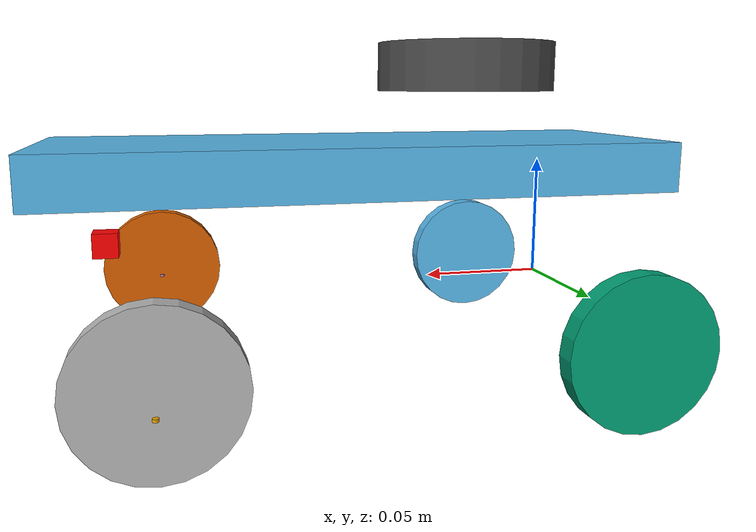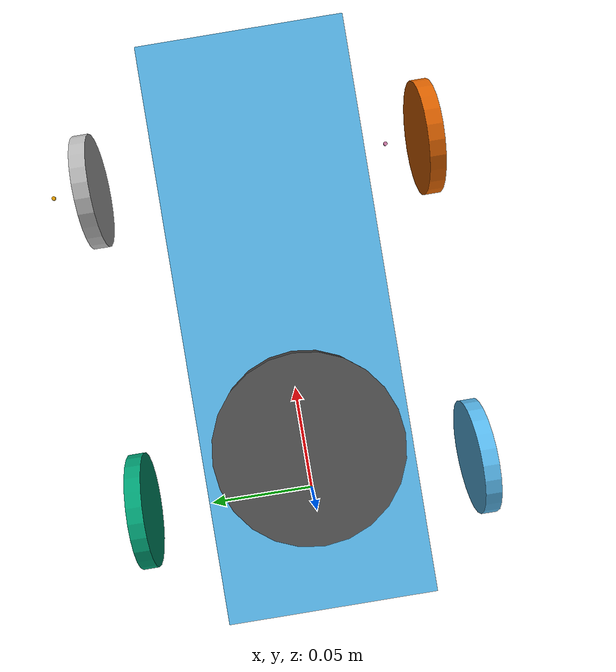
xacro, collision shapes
<?xml version="1.0" ?>

<robot name="hamster" xmlns:xacro="http://www.ros.org/wiki/xacro">

	<xacro:include filename="$(find hamster_vehicle_description)/urdf/front_wheel.urdf.xacro" />
	<xacro:include filename="$(find hamster_vehicle_description)/urdf/rear_wheel.urdf.xacro" />

	<xacro:macro name="solid_cuboid_inertia" params="w h d m">
	<inertia  ixx="${m*(h*h+d*d)/12}" ixy = "0" ixz = "0"
						iyy="${m*(w*w+d*d)/12}" iyz = "0"
						izz="${m*(w*w+h*h)/12}" />
	</xacro:macro>

	<xacro:arg name="agent" default="agent1" />
	<xacro:arg name="robot_version" default="V6"/>
	<xacro:arg name="is_simulation" default="true"/>

	<xacro:property name="version" value="$(arg robot_version)"/>
	<xacro:property name="simulation" value="$(arg is_simulation)"/>

	<material name="red">
		<color rgba="${255/255} ${0/255} ${0/255} 1.0"/>
	</material>

	<link name="$(arg agent)/base_link" />

	<link name="$(arg agent)/body">
		<inertial>
			<mass value="3.0" />
			<xacro:solid_cuboid_inertia w="0.1" h="0.1" d="0.3" m="3.0"/>
		</inertial>
		<visual>
			<origin xyz="0 0 0" rpy="0 0 0"/>
			<geometry>
				<mesh filename="package://hamster_vehicle_description/meshes/shell.dae" />
			</geometry>
		</visual>
		<collision>
			<origin xyz="0 0 0.05" rpy="0 0 0"/>
			<geometry>
				<box size="0.25 0.09 0.02" />
			</geometry>
		</collision>
	</link>

	<link name="$(arg agent)/imu_link">
		<inertial>
			<mass value="0.01" />
			<xacro:solid_cuboid_inertia w="0.05" h="0.05" d="0.07" m="0.01"/>
		</inertial>
		<visual>
			<geometry>
				<box size="0.01 0.01 0.01" />
			</geometry>
		</visual>
	</link>

	<joint name="body_link_joint" type="fixed">
		<origin xyz="0.085 0 0" rpy="0 0 0" />
		<parent link="$(arg agent)/base_link" />
		<child  link="$(arg agent)/body" />
	</joint>

	<joint name="imu_link_joint" type="fixed">
		<origin xyz="0.085 0 0" rpy="0 0 0" />
		<parent link="$(arg agent)/base_link" />
		<child  link="$(arg agent)/imu_link" />
	</joint>

	<joint name="hokuyo_joint" type="fixed">
		<axis xyz="0 1 0" />
		<xacro:if value="${simulation}">
			<origin xyz="0.035 0 0.09" rpy="0 0 -3.14"/>
		</xacro:if>
		<xacro:unless value="${simulation}">
			<origin xyz="0.035 0 0.09" rpy="0 0 0"/>
		</xacro:unless>
		<parent link="$(arg agent)/base_link"/>
		<child link="$(arg agent)/lidar_link"/>
	</joint>

	<joint name="camera_joint" type="fixed">
		<xacro:if value="${version == 'V7'}">
			<origin xyz="0.20173 0 0.028" rpy="0 0 0"/>
		</xacro:if>
		<xacro:if value="${version == 'V6'}">
			<origin xyz="0.185 0 0.02" rpy="0 0 0"/>
		</xacro:if>
		<parent link="$(arg agent)/base_link"/>
		<child link="$(arg agent)/camera_link"/>
	</joint>

	<xacro:if value="${version == 'V7'}">
		<link name="$(arg agent)/camera_optical_frame_link"/>
			<joint name="camera_optical_joint" type="fixed">
				<origin xyz="0 0 0" rpy="-1.57 0 -1.57"/>
				<parent link="$(arg agent)/camera_link"/>
				<child link="$(arg agent)/camera_optical_frame_link"/>
			</joint>
	</xacro:if>

	<!-- Hokuyo Laser -->
	<link name="$(arg agent)/lidar_link">
		<visual>
			<geometry>
				<mesh filename="package://hamster_vehicle_description/meshes/A2_lidar.dae" />
			</geometry>
		</visual>
		<collision>
			<origin xyz="0 0 0" rpy="0 0 0" />
			<geometry>
				<cylinder length="0.02" radius="0.037" />
			</geometry>
		</collision>
	</link>

	<link name="$(arg agent)/camera_link">
		<collision>
			<geometry>
		<box size="0.01 0.01 0.01"/>
			</geometry>
		</collision>
		<visual>
			<geometry>
				<xacro:if value="${version == 'V7'}">
				<mesh filename="package://hamster_vehicle_description/meshes/d415.stl" />
				</xacro:if>
				<xacro:if value="${version == 'V6'}">
				<mesh filename="package://hamster_vehicle_description/meshes/camera.stl" />
				</xacro:if>
			</geometry>
			<material name="red"/>
		</visual>
		<inertial>
			<mass value="1e-5" />
			<inertia ixx="1e-6" ixy="0" ixz="0" iyy="1e-6" iyz="0" izz="1e-6" />
		</inertial>
	</link>

	<xacro:front_wheel agent="$(arg agent)" fr="front" lr="right" parent="$(arg agent)/base_link" origin_x="0.165" origin_y="-0.086" origin_z="-0.01"/>
	<xacro:front_wheel agent="$(arg agent)" fr="front" lr="left"  parent="$(arg agent)/base_link" origin_x="0.165" origin_y="0.086"  origin_z="-0.01"/>
	<xacro:rear_wheel  agent="$(arg agent)" fr="rear"  lr="right" parent="$(arg agent)/base_link" origin_x="0.0"   origin_y="-0.086" origin_z="-0.01"/>
	<xacro:rear_wheel  agent="$(arg agent)" fr="rear"  lr="left"  parent="$(arg agent)/base_link" origin_x="0.0"   origin_y="0.086"  origin_z="-0.01"/>

	<gazebo>
		<plugin name='ackermann_drive_plugin' filename='libgazebo_ros_ackermann_drive2.so'>

        <ros>
          <namespace>$(arg agent)</namespace>
        </ros>

        <update_rate>100.0</update_rate>

        <!-- wheels -->
        <front_left_joint>$(arg agent)_front_left_wheel_steering_joint</front_left_joint>
        <front_right_joint>$(arg agent)_front_right_wheel_steering_joint</front_right_joint>
        <rear_left_joint>$(arg agent)_rear_left_wheel_joint</rear_left_joint>
        <rear_right_joint>$(arg agent)_rear_right_wheel_joint</rear_right_joint>
        <left_steering_joint>$(arg agent)_front_left_wheel_steering_joint</left_steering_joint>
        <right_steering_joint>$(arg agent)_front_right_wheel_steering_joint</right_steering_joint>

        <!-- Max absolute steer angle for tyre in radians-->
        <!-- Any cmd_vel angular z greater than this would be capped -->
        <max_steer>0.6458</max_steer>

        <!-- Max absolute steering angle of steering wheel -->
        <max_steering_angle>7.85</max_steering_angle>

        <!-- Max absolute linear speed in m/s -->
        <max_speed>20</max_speed>

        <!-- PID tuning -->
        <left_steering_pid_gain>1500 0 1</left_steering_pid_gain>
        <left_steering_i_range>0 0</left_steering_i_range>
        <right_steering_pid_gain>1500 0 1</right_steering_pid_gain>
        <right_steering_i_range>0 0</right_steering_i_range>
        <linear_velocity_pid_gain>1000 0 1</linear_velocity_pid_gain>
        <linear_velocity_i_range>0 0</linear_velocity_i_range>

        <!-- output -->
        <publish_odom>true</publish_odom>
        <publish_odom_tf>true</publish_odom_tf>
        <publish_wheel_tf>true</publish_wheel_tf>

        <odometry_frame>$(arg agent)/odom</odometry_frame>
        <robot_base_frame>$(arg agent)/base_link</robot_base_frame>

      </plugin>
	</gazebo>

	<gazebo reference="$(arg agent)/imu_link">
		<gravity>true</gravity>
		<sensor name="imu_sensor" type="imu">
			<always_on>true</always_on>
			<update_rate>100</update_rate>
			<visualize>true</visualize>
			<topic>__default_topic__</topic>
			<plugin filename="libgazebo_ros_imu_sensor.so" name="imu_plugin">
				<ros>
					<namespace>$(arg agent)</namespace>
					<remapping>imu_plugin/out:=imu</remapping>
				</ros>
				<frame_name>$(arg agent)/imu_link</frame_name>
			</plugin>
		</sensor>
	</gazebo>

	<gazebo reference="$(arg agent)/lidar_link">
		<sensor type="ray" name="head_hokuyo_sensor">
			<pose>0 0 0 0 0 0</pose>
			<visualize>false</visualize>
			<update_rate>10</update_rate>
			<ray>
				<scan>
					<horizontal>
						<samples>360</samples>
						<resolution>1</resolution>
						<min_angle>-3.1415</min_angle>
						<max_angle>3.1415</max_angle>
					</horizontal>
				</scan>
				<range>
					<min>0.10</min>
					<max>12.0</max>
					<resolution>0.01</resolution>
				</range>
				<noise>
					<type>gaussian</type>
					<mean>0.0</mean>
					<stddev>0.01</stddev>
				</noise>
			</ray>
			<plugin name="lidar_plugin" filename="libgazebo_ros_ray_sensor.so">
				<ros>
					<namespace>$(arg agent)</namespace>
					<remapping>lidar_plugin/out:=scan</remapping>
				</ros>
				<frame_name>$(arg agent)/lidar_link</frame_name>
				<output_type>sensor_msgs/LaserScan</output_type>
			</plugin>
		</sensor>
		<material>Gazebo/DarkGrey</material>
	</gazebo>

	<xacro:if value="${version == 'V7'}">
		<gazebo reference="$(arg agent)/camera_link">
			<sensor name="depth_camera" type="depth">
				<update_rate>15</update_rate>
				<camera>
					<horizontal_fov>1.5882496</horizontal_fov>
					<image>
						<width>640</width>
						<height>480</height>
						<format>B8G8R8</format>
					</image>
					<clip>
						<near>0.05</near>
						<far>200</far>
					</clip>
				</camera>
				<plugin name="camera_plugin" filename="libgazebo_ros_camera.so">
					<ros>
						<namespace>$(arg agent)</namespace>
					</ros>
					<alwaysOn>true</alwaysOn>
					<camera_name>camera</camera_name>
					<frame_name>$(arg agent)/camera_link</frame_name>
					<P_cx>0</P_cx>
					<P_cy>320.5</P_cy>
					<P_fy>0</P_fy>
					<Tx>240.5</Tx>
					<Ty>0</Ty>
					<rectification_matrix>0.999 0.0 -0.049 0.0 1.0 0.0 0.049 0.0 0.999</rectification_matrix>
					<hack_baseline>0.07</hack_baseline>
				</plugin>
			</sensor>
		</gazebo>
	</xacro:if>

	<xacro:if value="${version == 'V6'}">
		<gazebo reference="$(arg agent)/camera_link">
			<sensor type="camera" name="camera1">
				<update_rate>30.0</update_rate>
				<camera name="head">
					<horizontal_fov>1.3962634</horizontal_fov>
					<image>
						<width>800</width>
						<height>800</height>
						<format>R8G8B8</format>
					</image>
					<clip>
						<near>0.02</near>
						<far>300</far>
					</clip>
					<noise>
						<type>gaussian</type>
						<!-- Noise is sampled independently per pixel on each frame.-->
						<!-- That pixel's noise value is added to each of its color -->
						<!-- channels, which at that point lie in the range [0,1]. -->
						<mean>0.0</mean>
						<stddev>0.007</stddev>
					</noise>
				</camera>
				<plugin name="camera_plugin" filename="libgazebo_ros_camera.so">
					<ros>
						<namespace>$(arg agent)</namespace>
					</ros>
					<alwaysOn>true</alwaysOn>
					<camera_name>camera</camera_name>
					<frame_name>$(arg agent)/camera_link</frame_name>
					<P_cx>0</P_cx>
					<P_cy>320.5</P_cy>
					<P_fy>0</P_fy>
					<Tx>240.5</Tx>
					<Ty>0</Ty>
					<rectification_matrix>0.999 0.0 -0.049 0.0 1.0 0.0 0.049 0.0 0.999</rectification_matrix>
					<hack_baseline>0.07</hack_baseline>
				</plugin>
			</sensor>
		</gazebo>
	</xacro:if>
</robot>

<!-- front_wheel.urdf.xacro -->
<robot name="front_wheel" xmlns:xacro="http://www.ros.org/wiki/xacro">

  <!-- Wheels -->
  <xacro:property name="wheel_radius" value="0.029" />
  <xacro:property name="wheel_height" value="0.02" />
  <xacro:property name="wheel_mass" value="0.1" /> <!-- in kg-->

  <xacro:macro name="cylinder_inertia" params="m r h">
    <inertia  ixx="${m*(3*r*r+h*h)/12}" ixy="0" ixz="0"
              iyy="${m*(3*r*r+h*h)/12}" iyz="0"
              izz="${m*r*r/2}" />
  </xacro:macro>

  <!--fr : front, rear ; lr: left, right -->
  <xacro:macro name="front_wheel" params="agent fr lr parent origin_x origin_y origin_z">
    <link name="${agent}/${fr}_${lr}_wheel">
      <visual>
        <origin xyz="0 0 0" rpy="1.57 0 0" />
        <geometry>
          <mesh filename="package://hamster_vehicle_description/meshes/hamster_wheel.dae" />
        </geometry>
      </visual>
      <collision>
        <origin xyz="0 0 0" rpy="1.57 0 0" />
        <geometry>
          <cylinder length="0.008" radius="${wheel_radius}" />
        </geometry>
      </collision>
      <inertial>
        <mass value="${wheel_mass}" />
        <origin xyz="0 0 0" rpy="1.57 0 0" />
        <xacro:cylinder_inertia  m="${wheel_mass}" r="${wheel_radius}" h="${wheel_height}" />
      </inertial>
    </link>

    <link name="${agent}/${fr}_${lr}_wheel_steering">
      <collision>
        <origin xyz="0 0.02 0" rpy="0 0 0" />
        <geometry>
          <cylinder length="0.001" radius="0.001" />
        </geometry>
      </collision>
      <inertial>
        <mass value="0.1" />
        <origin xyz="0 0 0" rpy="0 0 0" />
        <xacro:cylinder_inertia  m="0.1" r="0.01" h="0.01" />
      </inertial>
    </link>

    <gazebo reference="${agent}/${fr}_${lr}_wheel">
      <mu1>0.7</mu1>
      <mu2>0.7</mu2>
      <kp>500000.0</kp>
      <kd>10.0</kd>
      <minDepth>0.002</minDepth>
      <maxVel>0.1</maxVel>
      <fdir1>1 0 0</fdir1>
      <maxContacts>20</maxContacts>
    </gazebo>

    <joint name="${agent}_${fr}_${lr}_wheel_joint" type="continuous">
      <parent link="${agent}/${fr}_${lr}_wheel_steering"/>
      <child link="${agent}/${fr}_${lr}_wheel"/>
      <origin xyz="0 0 0" rpy="0 0 0" />
      <axis xyz="0 1 0"/>
      <limit effort="-1" velocity="-1"/>
      <dynamics friction="0.5" damping="0.7" />
    </joint>

    <joint name="${agent}_${fr}_${lr}_wheel_steering_joint" type="continuous">
      <parent link="${parent}"/>
      <child link="${agent}/${fr}_${lr}_wheel_steering"/>
      <origin xyz="${origin_x} ${origin_y} ${origin_z}" rpy="0 0 0" />
      <axis xyz="0 1 0" />
    </joint>

  </xacro:macro>
</robot>

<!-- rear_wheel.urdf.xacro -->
<robot name="rear_wheel" xmlns:xacro="http://www.ros.org/wiki/xacro">

  <!-- Wheels -->
  <xacro:property name="wheel_radius" value="0.029" />
  <xacro:property name="wheel_height" value="0.02" />
  <xacro:property name="wheel_mass" value="0.1" /> <!-- in kg-->

  <xacro:macro name="cylinder_inertia" params="m r h">
    <inertia  ixx="${m*(3*r*r+h*h)/12}" ixy="0" ixz="0"
              iyy="${m*(3*r*r+h*h)/12}" iyz="0"
              izz="${m*r*r/2}" />
  </xacro:macro>

  <!--fr : front, rear ; lr: left, right -->
  <xacro:macro name="rear_wheel" params="agent fr lr parent origin_x origin_y origin_z">
    <link name="${agent}/${fr}_${lr}_wheel">
      <visual>
        <origin xyz="0 0 0" rpy="1.57 0 0" />
        <geometry>
          <mesh filename="package://hamster_vehicle_description/meshes/hamster_wheel.dae" />
        </geometry>
      </visual>
      <collision>
        <origin xyz="0 0 0" rpy="1.57 0 0" />
        <geometry>
          <cylinder length="0.008" radius="${wheel_radius}" />
        </geometry>
      </collision>
      <inertial>
        <mass value="${wheel_mass}" />
        <origin xyz="0 0 0" rpy="1.57 0 0" />
        <xacro:cylinder_inertia  m="${wheel_mass}" r="${wheel_radius}" h="${wheel_height}" />
      </inertial>
    </link>

    <gazebo reference="${agent}/${fr}_${lr}_wheel">
      <mu1>0.7</mu1>
      <mu2>0.7</mu2>
      <kp>500000.0</kp>
      <kd>10.0</kd>
      <minDepth>0.002</minDepth>
      <maxVel>0.1</maxVel>
      <fdir1>1 0 0</fdir1>
      <maxContacts>20</maxContacts>
    </gazebo>

    <joint name="${agent}_${fr}_${lr}_wheel_joint" type="continuous">
      <parent link="${parent}"/>
      <child link="${agent}/${fr}_${lr}_wheel"/>
      <origin xyz="${origin_x} ${origin_y} ${origin_z}" rpy="0 0 0" />
      <axis xyz="0 1 0"/>
      <limit effort="-1" velocity="-1"/>
    </joint>

  </xacro:macro>
</robot>
